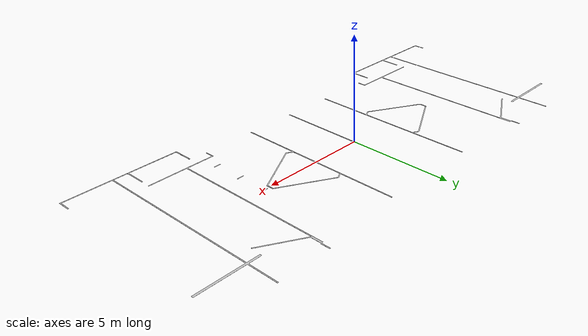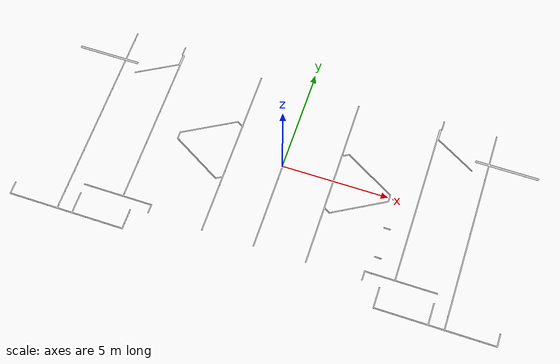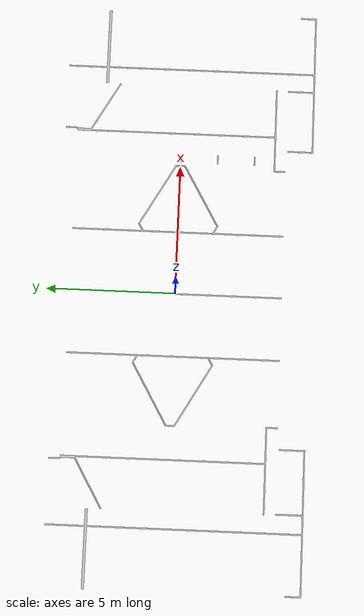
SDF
<?xml version="1.0" encoding="utf-8"?>
<sdf version="1.5">
  <model name="TapeLines">
    <pose>0 0 -0.01127 0 0 0</pose>

    <link name="Lines">
      <gravity>1</gravity>
      <self_collide>0</self_collide>
      <pose>0.0281578984571149 -0.684850776536286 9.02650062517257E-05 -1.5707963267949 0 -3.14159265358979</pose>
      <must_be_base_link>1</must_be_base_link>
      <velocity_decay>
        <linear>0</linear>
        <angular>0</angular>
      </velocity_decay>
      <inertial>
        <mass>12.1855060682561</mass>
        <pose>0 0 0 0 0 0</pose>
        <inertia>
          <ixx>82.7995865044618</ixx>
          <ixy>0.000186908513684621</ixy>
          <ixz>0.263951147068778</ixz>
          <iyy>720.319001769873</iyy>
          <iyz>0.00369345068443424</iyz>
          <izz>637.519417897121</izz>
        </inertia>
      </inertial>
      <visual name="Lines_visual">
        <pose>0.0281578984571148 -0.00595493499374843 -0.684851012914707 0 0 0</pose>
        <material>
          <ambient>0.752941176470588 0.752941176470588 0.752941176470588 1</ambient>
          <diffuse>0.752941176470588 0.752941176470588 0.752941176470588 1</diffuse>
        </material>
        <geometry>
          <mesh>
            <scale>1 1 1</scale>
            <uri>model://TapeLines/meshes/Lines.STL</uri>
          </mesh>
        </geometry>
      </visual>
    </link>
    <joint name="tape-World" type="fixed">
      <parent>world</parent>
      <child>Lines</child>
   </joint>
  </model>
</sdf>
